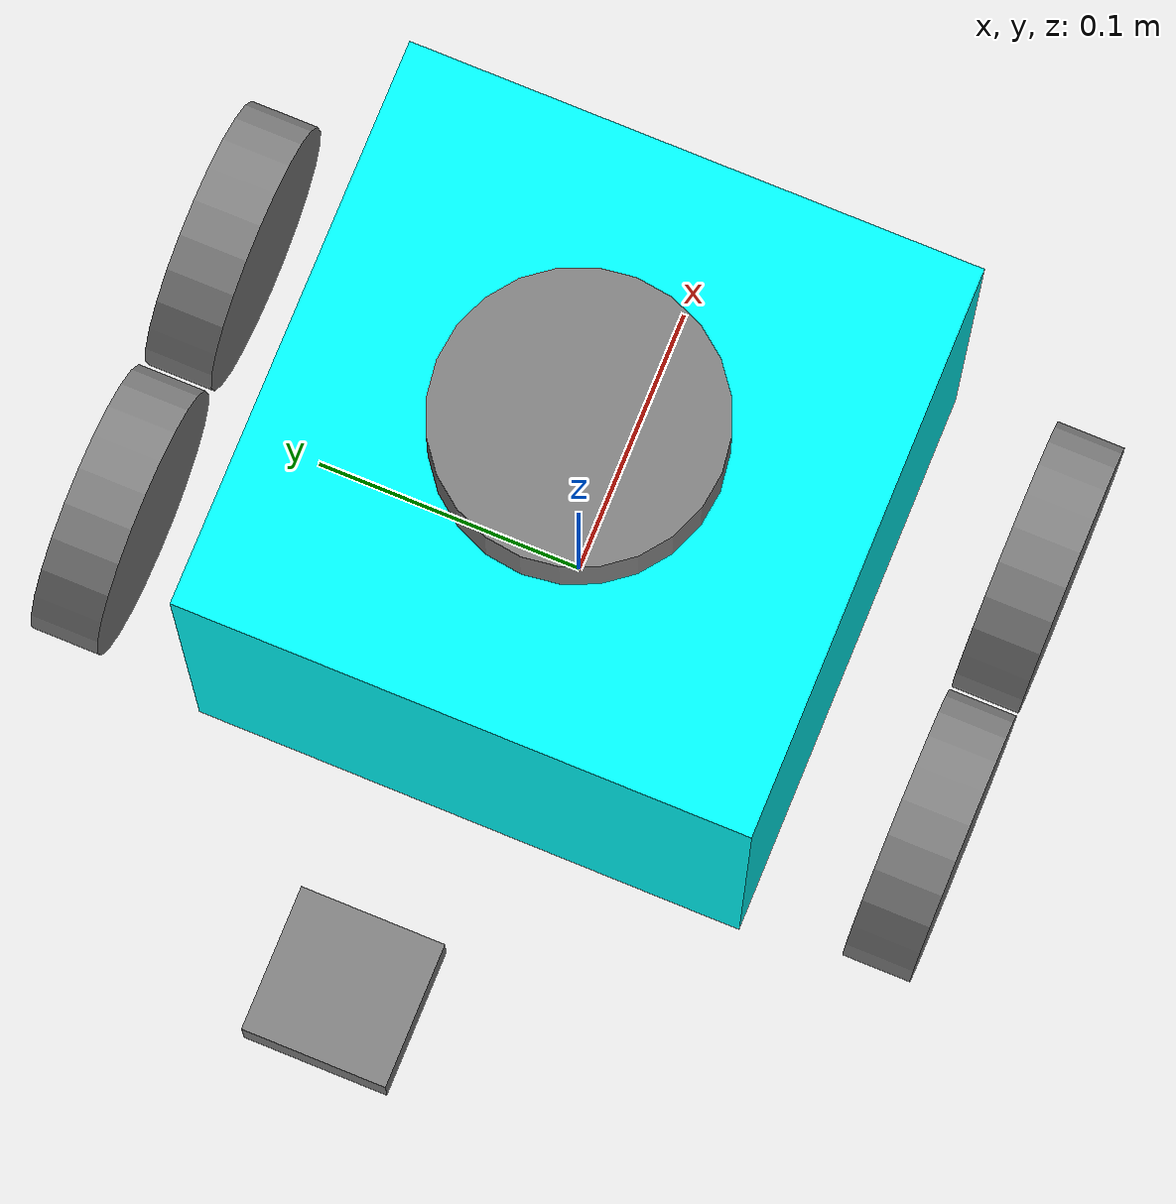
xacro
<?xml version="1.0"?>
<robot name="sec_bot" xmlns:xacro="http://ros.org/wiki/xacro">

    <xacro:arg name="use_ros2_control" default="true"/>
    <xacro:arg name="sim_mode" default="true"/>

    <!-- Define robot constants -->
    <!-- Meters -->
    <xacro:property name="chassis_length" value="0.205"/>
    <xacro:property name="chassis_width" value="0.205"/>
    <xacro:property name="chassis_height" value="0.205"/>
    <xacro:property name="chassis_mass" value="10"/> <!--WHat is the unit for this?-->
    <xacro:property name="chassis_z_offset" value="0.1"/> <!--Currently unused, going to try to implement for total height translation-->

    <xacro:property name="wheel_radius" value="0.05"/> <!-- Update wheel radius paramter in controllers.yaml as well-->
    <xacro:property name="wheel_length" value="0.025"/>
    <xacro:property name="wheel_mass" value="10"/>

    <!-- The difference between bottom middle of chassis and wheel position(s)-->
    <xacro:property name="wheel_x_displacement" value="${chassis_length/4}"/>
    <xacro:property name="wheel_y_displacement" value="${chassis_width/2+wheel_radius}"/> <!-- Update wheel separation paramter in controllers.yaml as well-->
    <xacro:property name="wheel_z_displacement" value="0.03"/>

    <xacro:property name="camera_x" value="0.010"/>
    <xacro:property name="camera_y" value="0.03"/>
    <xacro:property name="camera_z" value="0.03"/>
    <xacro:property name="camera_fov" value="1.089"/>

    <xacro:property name="imu_length" value="0.05"/>
    <xacro:property name="imu_width" value="0.05"/>
    <xacro:property name="imu_height" value="0.02"/>

    <xacro:property name="lidar_radius" value="0.05"/>
    <xacro:property name="lidar_length" value="0.04"/>

    <xacro:include filename="robot_core.xacro"/>
    <xacro:include filename="camera.xacro"/>
    <xacro:include filename="imu.xacro"/>
    <xacro:include filename="lidar.xacro"/>

    <xacro:if value="$(arg use_ros2_control)">
        <xacro:include filename="ros2_control.xacro" />
    </xacro:if>
    <xacro:unless value="$(arg use_ros2_control)">
        <xacro:include filename="gazebo_control.xacro" />
    </xacro:unless>

</robot>

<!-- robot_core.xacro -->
<robot xmlns:xacro="http://ros.org/wiki/xacro">

    <xacro:include filename="inertial_macros.xacro"/>

    <!-- Base Link -->
    <link name="base_link"/>

    <!--Base Footprint Link-->
    <joint name="base_footprint_joint" type="fixed">
        <parent link="base_link"/>
        <child link="base_footprint"/>
        <origin xyz="0 0 0" rpy="0 0 0"/>
    </joint>

    <link name="base_footprint">
    </link>

    <!-- Chassis -->
    <joint name="chassis_joint" type="fixed">
        <parent link="base_link"/>
        <child link="chassis"/>
        <origin xyz="0.0 0.0 ${wheel_radius/2}" rpy="0 0 0"/>
    </joint>

    <link name="chassis">
        <visual>
            <origin xyz="0 0 ${chassis_height/2}" rpy="0 0 0"/>
            <geometry>
                <box size="${chassis_length} ${chassis_width} ${chassis_height}"/>
            </geometry>
            <material name="Cyan">
                <color rgba="0 1.0 1.0 1.0"/>
            </material>
        </visual>

        <collision>
            <origin xyz="0 0 ${chassis_height/2}" rpy="0 0 0"/>
            <geometry>
                <box size="${chassis_length} ${chassis_width} ${chassis_height}"/>
            </geometry>
        </collision>

        <xacro:inertial_box mass="${chassis_mass}" x="${chassis_length}" y="${chassis_width}" z="${chassis_height}">
            <origin xyz="0 0 ${chassis_height/2}" rpy="0 0 0"/>
        </xacro:inertial_box>
    </link>

    <!-- Wheels -->
    <xacro:macro name="wheel" params="prefix l_r f_b">
        <joint name="${prefix}_wheel_joint" type="continuous">
            <parent link="chassis"/>
            <child link="${prefix}_wheel_link"/>
            <origin xyz="${l_r*wheel_x_displacement} ${f_b*wheel_y_displacement} ${wheel_z_displacement}" rpy="0 0 0"/>
            <axis xyz="0 1 0"/>
        </joint>

        <link name="${prefix}_wheel_link">
            <visual>
                <origin xyz="0 0 0" rpy="${pi/2} 0 0"/>
                <geometry>
                    <cylinder radius="${wheel_radius}" length="${wheel_length}"/>
                </geometry>
                <material name="Gray">
                    <color rgba="0.5 0.5 0.5 1.0"/>
                </material>
            </visual>

            <collision>
                <origin xyz="0 0 0" rpy="${pi/2} 0 0"/>
                <geometry>
                    <sphere radius="${wheel_radius}"/>
                </geometry>
            </collision>

            <xacro:inertial_cylinder mass="${wheel_mass}" length="${wheel_length}" radius="${wheel_radius}">
                <origin xyz="0 0 0" rpy="${pi/2} 0 0"/>
            </xacro:inertial_cylinder>
        </link>

        <gazebo reference="${prefix}_wheel_link">
            <material>Gazebo/Blue</material>
        </gazebo>
    </xacro:macro>

    <xacro:wheel prefix="b_l" l_r="-1" f_b="1" />
    <xacro:wheel prefix="b_r" l_r="-1" f_b="-1" />
    <xacro:wheel prefix="f_l" l_r="1"  f_b="1" />
    <xacro:wheel prefix="f_r" l_r="1"  f_b="-1" />

</robot>

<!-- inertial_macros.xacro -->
<robot xmlns:xacro="http://www.ros.org/wiki/xacro">

    <!-- Specify some standard inertial calculations https://en.wikipedia.org/wiki/List_of_moments_of_inertia -->
    <!-- These make use of xacro's mathematical functionality -->

    <xacro:macro name="inertial_sphere" params="mass radius *origin">
        <inertial>
            <xacro:insert_block name="origin"/>
            <mass value="${mass}"/>
            <inertia ixx="${(2/5) * mass * (radius*radius)}" ixy="0.0" ixz="0.0"
                     iyy="${(2/5) * mass * (radius*radius)}" iyz="0.0"
                     izz="${(2/5) * mass * (radius*radius)}"/>
        </inertial>
    </xacro:macro>

    <xacro:macro name="inertial_box" params="mass x y z *origin">
        <inertial>
            <xacro:insert_block name="origin"/>
            <mass value="${mass}"/>
            <inertia ixx="${(1/12) * mass * (y*y+z*z)}" ixy="0.0" ixz="0.0"
                     iyy="${(1/12) * mass * (x*x+z*z)}" iyz="0.0"
                     izz="${(1/12) * mass * (x*x+y*y)}"/>
        </inertial>
    </xacro:macro>

    <xacro:macro name="inertial_cylinder" params="mass length radius *origin">
        <inertial>
            <xacro:insert_block name="origin"/>
            <mass value="${mass}"/>
            <inertia ixx="${(1/12) * mass * (3*radius*radius + length*length)}" ixy="0.0" ixz="0.0"
                     iyy="${(1/12) * mass * (3*radius*radius + length*length)}" iyz="0.0"
                     izz="${(1/2) * mass * (radius*radius)}"/>
        </inertial>
    </xacro:macro>

</robot>

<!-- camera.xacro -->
<robot xmlns:xacro="http://ros.org/wiki/xacro">

    <joint name="camera_joint" type="fixed">
            <parent link="chassis"/>
            <child link="camera_link"/>
            <origin xyz="${(chassis_length/2)+(camera_x/2)} 0 ${chassis_height/2}" rpy="0 0 0"/>
        </joint>

        <link name="camera_link">
            <visual>
                <geometry>
                    <box size="${camera_x} ${camera_y} ${camera_z}"/>
                </geometry>
                <material name="Gray">
                    <color rgba="0.5 0.5 0.5 1.0"/>
                </material>
            </visual>
        </link>

        <joint name="camera_optical_joint" type="fixed">
            <parent link="camera_link"/>
            <child link="camera_link_optical"/>
            <origin xyz="0 0 0" rpy="${-pi/2} 0 ${-pi/2}"/>
        </joint>

        <link name="camera_link_optical"></link>

        <gazebo reference="camera_link">
            <material>Gazebo/Red</material>

            <sensor name="camera" type="camera">
                <pose> 0 0 0 0 0 0 </pose>
                <visualize>true</visualize>
                <update_rate>10</update_rate>
                <camera>
                    <horizontal_fov>${camera_fov}</horizontal_fov>
                    <image>
                        <format>R8G8B8</format>
                        <width>640</width>
                        <height>480</height>
                    </image>
                    <clip>
                        <near>0.05</near>
                        <far>8.0</far>
                    </clip>
                </camera>
                <plugin name="camera_controller" filename="libgazebo_ros_camera.so">
                    <frame_name>camera_link_optical</frame_name>
                </plugin>
            </sensor>
        </gazebo>

</robot>

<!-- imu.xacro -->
<robot xmlns:xacro="http://ros.org/wiki/xacro">

    <joint name="imu_joint" type="fixed">
            <parent link="chassis"/>
            <child link="imu_link"/>
            <origin xyz="-0.2 0 ${chassis_height+(imu_height/2)}" rpy="0 0 0"/>
        </joint>

    <link name="imu_link">
        <visual>
            <geometry>
                <box size="${imu_length} ${imu_width} ${imu_height}"/>
            </geometry>
            <material name="Gray">
                <color rgba="0.5 0.5 0.5 1.0"/>
            </material>
        </visual>
        <xacro:inertial_box mass=".15" x="${imu_width}" y="${imu_length}" z="${imu_height}">
            <origin xyz="0 0 0" rpy="0 0 0"/>
        </xacro:inertial_box>
    </link>

    <gazebo reference="imu_link">
        <sensor name="br_imu" type="imu">
            <always_on>true</always_on>
            <update_rate>100</update_rate>
            <imu>
            <angular_velocity>
                <x>
                <noise type="gaussian">
                    <mean>0.0</mean>
                    <stddev>2e-4</stddev>
                </noise>
                </x>
                <y>
                <noise type="gaussian">
                    <mean>0.0</mean>
                    <stddev>2e-4</stddev>
                </noise>
                </y>
                <z>
                <noise type="gaussian">
                    <mean>0.0</mean>
                    <stddev>2e-4</stddev>
                </noise>
                </z>
            </angular_velocity>
            <linear_acceleration>
                <x>
                <noise type="gaussian">
                    <mean>0.0</mean>
                    <stddev>1.7e-2</stddev>
                </noise>
                </x>
                <y>
                <noise type="gaussian">
                    <mean>0.0</mean>
                    <stddev>1.7e-2</stddev>
                </noise>
                </y>
                <z>
                <noise type="gaussian">
                    <mean>0.0</mean>
                    <stddev>1.7e-2</stddev>
                </noise>
                </z>
            </linear_acceleration>
            </imu>
            <plugin name="imu_controller" filename="libgazebo_ros_imu_sensor.so">
                <ros>
                    <remapping>~/out:=imu_broadcaster/imu</remapping>
                </ros>
                <initial_orientation_as_reference>true</initial_orientation_as_reference>
            </plugin>
        </sensor>
    </gazebo>
</robot>

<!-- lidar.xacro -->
<robot xmlns:xacro="http://ros.org/wiki/xacro">

    <joint name="lidar_joint" type="fixed">
            <parent link="chassis"/>
            <child link="lidar_link"/>
            <origin xyz="0 0 ${chassis_height+(imu_height/2)}" rpy="0 0 0"/>
    </joint>

    <link name="lidar_link">
        <visual>
            <geometry>
                <cylinder radius="${lidar_radius}" length="${lidar_length}"/>
            </geometry>
            <material name="Gray">
                <color rgba="0.5 0.5 0.5 1.0"/>
            </material>
        </visual>
        <xacro:inertial_cylinder mass="0.1" length="0.04" radius="0.05">
            <origin xyz="0 0 0" rpy="0 0 0"/>
        </xacro:inertial_cylinder>
    </link>

    <gazebo reference="lidar_link">
        <sensor name="laser" type="ray">
            <visualize>false</visualize>
            <pose>0.0 0 0.0 0 0 0</pose>
            <update_rate>10</update_rate>
            <ray>
                <scan>
                    <horizontal>
                    <samples>360</samples>
                    <resolution>1</resolution>
                    <min_angle>-3.14</min_angle>
                    <max_angle>3.14</max_angle>
                    </horizontal>
                </scan>
                <range>
                    <min>0.3</min>
                    <max>12</max>
                    <resolution>0.01</resolution>
                </range>
            </ray>
            <plugin name="laser_controller" filename="libgazebo_ros_ray_sensor.so">
                <ros>
                    <argument>~/out:=scan</argument>
                </ros>
                <output_type>sensor_msgs/LaserScan</output_type>
                <frame_name>lidar_link</frame_name>
            </plugin>
        </sensor>
    </gazebo>

</robot>
